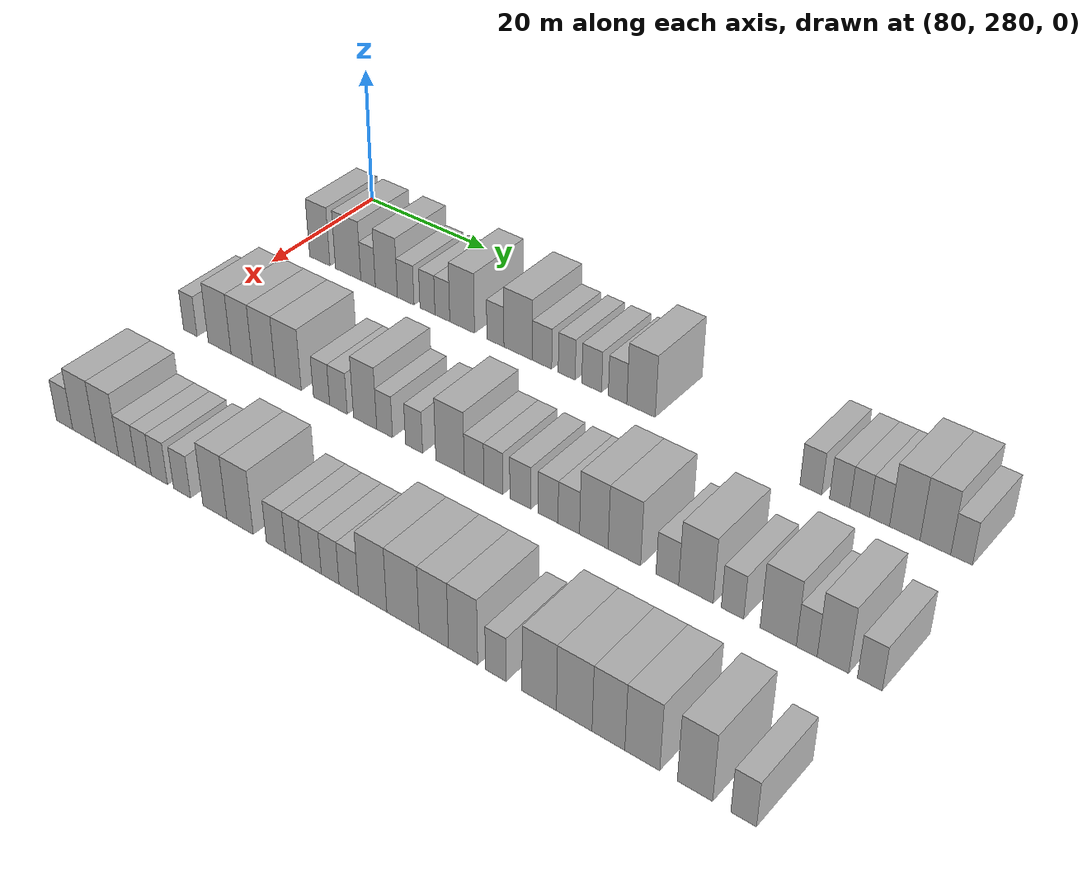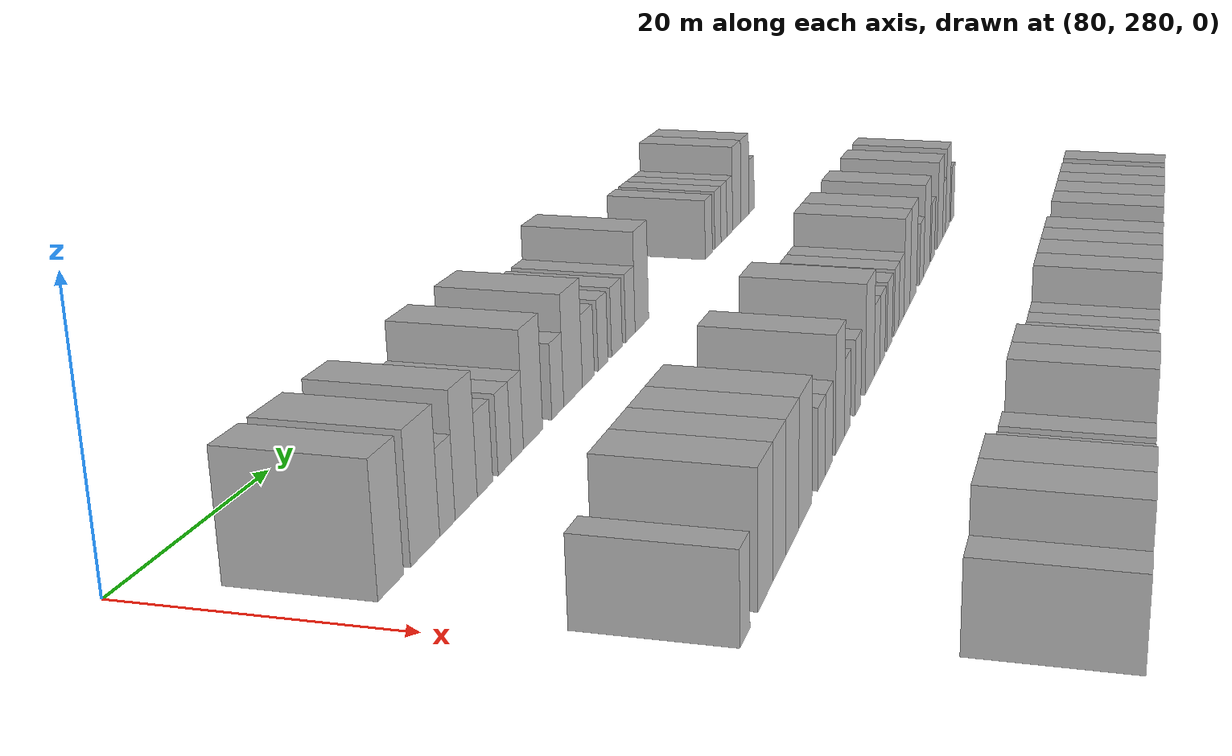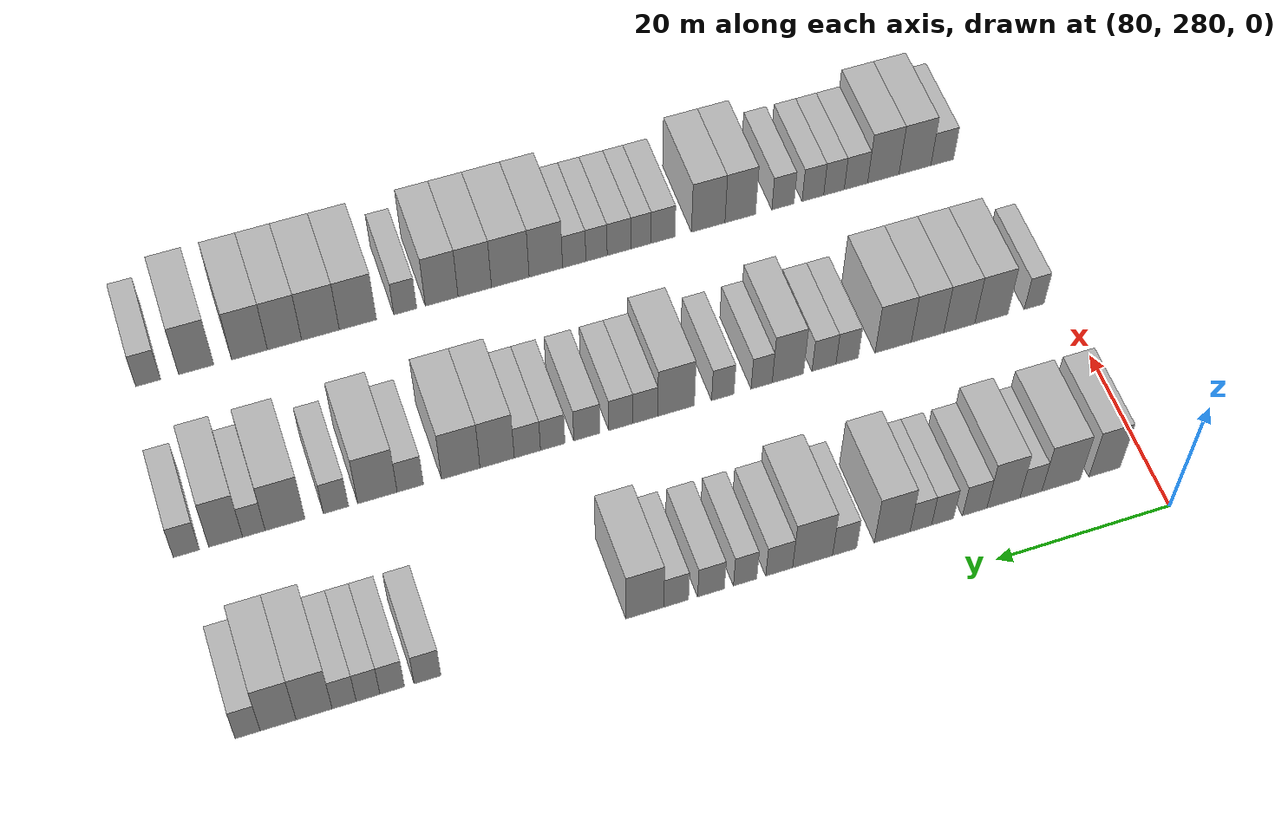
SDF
<sdf version="1.6">
 <world name="default">
  <model name="building_749">
   <static>1</static>
   <pose>91.0000 284.8471 0 0.000000 0.000000 0.000000</pose>
   <link name="link">
    <pose>0 0 4.50 0 0 0</pose>
    <collision name="collision"><geometry><box><size>10.0000 3.6619 9.0000</size></box></geometry></collision>
    <visual name="visual">
     <cast_shadows>0</cast_shadows>
     <geometry><box><size>10.0000 3.6619 9.0000</size></box></geometry>
     <material>
      <script>
       <uri>model://HANNAS_wall/materials/scripts</uri>
       <uri>model://HANNAS_wall/materials/textures</uri>
       <name>vrc/HANNAS_wall</name>
      </script>
     </material>
    </visual>
   </link>
  </model>
  <model name="building_750">
   <static>1</static>
   <pose>91.0000 289.9265 0 0.000000 0.000000 0.000000</pose>
   <link name="link">
    <pose>0 0 4.50 0 0 0</pose>
    <collision name="collision"><geometry><box><size>10.0000 4.4968 9.0000</size></box></geometry></collision>
    <visual name="visual">
     <cast_shadows>0</cast_shadows>
     <geometry><box><size>10.0000 4.4968 9.0000</size></box></geometry>
     <material>
      <script>
       <uri>model://HANNAS_wall/materials/scripts</uri>
       <uri>model://HANNAS_wall/materials/textures</uri>
       <name>vrc/HANNAS_wall</name>
      </script>
     </material>
    </visual>
   </link>
  </model>
  <model name="building_751">
   <static>1</static>
   <pose>91.0000 293.4437 0 0.000000 0.000000 0.000000</pose>
   <link name="link">
    <pose>0 0 3.00 0 0 0</pose>
    <collision name="collision"><geometry><box><size>10.0000 2.5376 6.0000</size></box></geometry></collision>
    <visual name="visual">
     <cast_shadows>0</cast_shadows>
     <geometry><box><size>10.0000 2.5376 6.0000</size></box></geometry>
     <material>
      <script>
       <uri>model://HANNAS_wall/materials/scripts</uri>
       <uri>model://HANNAS_wall/materials/textures</uri>
       <name>vrc/HANNAS_wall</name>
      </script>
     </material>
    </visual>
   </link>
  </model>
  <model name="building_752">
   <static>1</static>
   <pose>91.0000 296.6152 0 0.000000 0.000000 0.000000</pose>
   <link name="link">
    <pose>0 0 4.50 0 0 0</pose>
    <collision name="collision"><geometry><box><size>10.0000 3.8053 9.0000</size></box></geometry></collision>
    <visual name="visual">
     <cast_shadows>0</cast_shadows>
     <geometry><box><size>10.0000 3.8053 9.0000</size></box></geometry>
     <material>
      <script>
       <uri>model://HANNAS_wall/materials/scripts</uri>
       <uri>model://HANNAS_wall/materials/textures</uri>
       <name>vrc/HANNAS_wall</name>
      </script>
     </material>
    </visual>
   </link>
  </model>
  <model name="building_753">
   <static>1</static>
   <pose>91.0000 299.9301 0 0.000000 0.000000 0.000000</pose>
   <link name="link">
    <pose>0 0 3.00 0 0 0</pose>
    <collision name="collision"><geometry><box><size>10.0000 2.8246 6.0000</size></box></geometry></collision>
    <visual name="visual">
     <cast_shadows>0</cast_shadows>
     <geometry><box><size>10.0000 2.8246 6.0000</size></box></geometry>
     <material>
      <script>
       <uri>model://HANNAS_wall/materials/scripts</uri>
       <uri>model://HANNAS_wall/materials/textures</uri>
       <name>vrc/HANNAS_wall</name>
      </script>
     </material>
    </visual>
   </link>
  </model>
  <model name="building_754">
   <static>1</static>
   <pose>91.0000 303.6006 0 0.000000 0.000000 0.000000</pose>
   <link name="link">
    <pose>0 0 3.00 0 0 0</pose>
    <collision name="collision"><geometry><box><size>10.0000 2.5164 6.0000</size></box></geometry></collision>
    <visual name="visual">
     <cast_shadows>0</cast_shadows>
     <geometry><box><size>10.0000 2.5164 6.0000</size></box></geometry>
     <material>
      <script>
       <uri>model://HANNAS_wall/materials/scripts</uri>
       <uri>model://HANNAS_wall/materials/textures</uri>
       <name>vrc/HANNAS_wall</name>
      </script>
     </material>
    </visual>
   </link>
  </model>
  <model name="building_755">
   <static>1</static>
   <pose>91.0000 306.0857 0 0.000000 0.000000 0.000000</pose>
   <link name="link">
    <pose>0 0 3.00 0 0 0</pose>
    <collision name="collision"><geometry><box><size>10.0000 2.4538 6.0000</size></box></geometry></collision>
    <visual name="visual">
     <cast_shadows>0</cast_shadows>
     <geometry><box><size>10.0000 2.4538 6.0000</size></box></geometry>
     <material>
      <script>
       <uri>model://HANNAS_wall/materials/scripts</uri>
       <uri>model://HANNAS_wall/materials/textures</uri>
       <name>vrc/HANNAS_wall</name>
      </script>
     </material>
    </visual>
   </link>
  </model>
  <model name="building_756">
   <static>1</static>
   <pose>91.0000 309.3356 0 0.000000 0.000000 0.000000</pose>
   <link name="link">
    <pose>0 0 4.50 0 0 0</pose>
    <collision name="collision"><geometry><box><size>10.0000 4.0461 9.0000</size></box></geometry></collision>
    <visual name="visual">
     <cast_shadows>0</cast_shadows>
     <geometry><box><size>10.0000 4.0461 9.0000</size></box></geometry>
     <material>
      <script>
       <uri>model://HANNAS_wall/materials/scripts</uri>
       <uri>model://HANNAS_wall/materials/textures</uri>
       <name>vrc/HANNAS_wall</name>
      </script>
     </material>
    </visual>
   </link>
  </model>
  <model name="building_757">
   <static>1</static>
   <pose>91.0000 314.7187 0 0.000000 0.000000 0.000000</pose>
   <link name="link">
    <pose>0 0 3.00 0 0 0</pose>
    <collision name="collision"><geometry><box><size>10.0000 2.7202 6.0000</size></box></geometry></collision>
    <visual name="visual">
     <cast_shadows>0</cast_shadows>
     <geometry><box><size>10.0000 2.7202 6.0000</size></box></geometry>
     <material>
      <script>
       <uri>model://HANNAS_wall/materials/scripts</uri>
       <uri>model://HANNAS_wall/materials/textures</uri>
       <name>vrc/HANNAS_wall</name>
      </script>
     </material>
    </visual>
   </link>
  </model>
  <model name="building_758">
   <static>1</static>
   <pose>91.0000 318.3155 0 0.000000 0.000000 0.000000</pose>
   <link name="link">
    <pose>0 0 4.50 0 0 0</pose>
    <collision name="collision"><geometry><box><size>10.0000 4.4735 9.0000</size></box></geometry></collision>
    <visual name="visual">
     <cast_shadows>0</cast_shadows>
     <geometry><box><size>10.0000 4.4735 9.0000</size></box></geometry>
     <material>
      <script>
       <uri>model://HANNAS_wall/materials/scripts</uri>
       <uri>model://HANNAS_wall/materials/textures</uri>
       <name>vrc/HANNAS_wall</name>
      </script>
     </material>
    </visual>
   </link>
  </model>
  <model name="building_759">
   <static>1</static>
   <pose>91.0000 322.0459 0 0.000000 0.000000 0.000000</pose>
   <link name="link">
    <pose>0 0 3.00 0 0 0</pose>
    <collision name="collision"><geometry><box><size>10.0000 2.9872 6.0000</size></box></geometry></collision>
    <visual name="visual">
     <cast_shadows>0</cast_shadows>
     <geometry><box><size>10.0000 2.9872 6.0000</size></box></geometry>
     <material>
      <script>
       <uri>model://HANNAS_wall/materials/scripts</uri>
       <uri>model://HANNAS_wall/materials/textures</uri>
       <name>vrc/HANNAS_wall</name>
      </script>
     </material>
    </visual>
   </link>
  </model>
  <model name="building_760">
   <static>1</static>
   <pose>91.0000 325.8309 0 0.000000 0.000000 0.000000</pose>
   <link name="link">
    <pose>0 0 3.00 0 0 0</pose>
    <collision name="collision"><geometry><box><size>10.0000 2.5828 6.0000</size></box></geometry></collision>
    <visual name="visual">
     <cast_shadows>0</cast_shadows>
     <geometry><box><size>10.0000 2.5828 6.0000</size></box></geometry>
     <material>
      <script>
       <uri>model://HANNAS_wall/materials/scripts</uri>
       <uri>model://HANNAS_wall/materials/textures</uri>
       <name>vrc/HANNAS_wall</name>
      </script>
     </material>
    </visual>
   </link>
  </model>
  <model name="building_761">
   <static>1</static>
   <pose>91.0000 329.5987 0 0.000000 0.000000 0.000000</pose>
   <link name="link">
    <pose>0 0 3.00 0 0 0</pose>
    <collision name="collision"><geometry><box><size>10.0000 2.9529 6.0000</size></box></geometry></collision>
    <visual name="visual">
     <cast_shadows>0</cast_shadows>
     <geometry><box><size>10.0000 2.9529 6.0000</size></box></geometry>
     <material>
      <script>
       <uri>model://HANNAS_wall/materials/scripts</uri>
       <uri>model://HANNAS_wall/materials/textures</uri>
       <name>vrc/HANNAS_wall</name>
      </script>
     </material>
    </visual>
   </link>
  </model>
  <model name="building_762">
   <static>1</static>
   <pose>91.0000 333.4351 0 0.000000 0.000000 0.000000</pose>
   <link name="link">
    <pose>0 0 3.00 0 0 0</pose>
    <collision name="collision"><geometry><box><size>10.0000 2.7197 6.0000</size></box></geometry></collision>
    <visual name="visual">
     <cast_shadows>0</cast_shadows>
     <geometry><box><size>10.0000 2.7197 6.0000</size></box></geometry>
     <material>
      <script>
       <uri>model://HANNAS_wall/materials/scripts</uri>
       <uri>model://HANNAS_wall/materials/textures</uri>
       <name>vrc/HANNAS_wall</name>
      </script>
     </material>
    </visual>
   </link>
  </model>
  <model name="building_763">
   <static>1</static>
   <pose>91.0000 336.8562 0 0.000000 0.000000 0.000000</pose>
   <link name="link">
    <pose>0 0 4.50 0 0 0</pose>
    <collision name="collision"><geometry><box><size>10.0000 4.1226 9.0000</size></box></geometry></collision>
    <visual name="visual">
     <cast_shadows>0</cast_shadows>
     <geometry><box><size>10.0000 4.1226 9.0000</size></box></geometry>
     <material>
      <script>
       <uri>model://HANNAS_wall/materials/scripts</uri>
       <uri>model://HANNAS_wall/materials/textures</uri>
       <name>vrc/HANNAS_wall</name>
      </script>
     </material>
    </visual>
   </link>
  </model>
  <model name="building_764">
   <static>1</static>
   <pose>91.0000 360.1532 0 0.000000 0.000000 0.000000</pose>
   <link name="link">
    <pose>0 0 3.00 0 0 0</pose>
    <collision name="collision"><geometry><box><size>10.0000 2.8238 6.0000</size></box></geometry></collision>
    <visual name="visual">
     <cast_shadows>0</cast_shadows>
     <geometry><box><size>10.0000 2.8238 6.0000</size></box></geometry>
     <material>
      <script>
       <uri>model://HANNAS_wall/materials/scripts</uri>
       <uri>model://HANNAS_wall/materials/textures</uri>
       <name>vrc/HANNAS_wall</name>
      </script>
     </material>
    </visual>
   </link>
  </model>
  <model name="building_765">
   <static>1</static>
   <pose>91.0000 363.8565 0 0.000000 0.000000 0.000000</pose>
   <link name="link">
    <pose>0 0 3.00 0 0 0</pose>
    <collision name="collision"><geometry><box><size>10.0000 2.5828 6.0000</size></box></geometry></collision>
    <visual name="visual">
     <cast_shadows>0</cast_shadows>
     <geometry><box><size>10.0000 2.5828 6.0000</size></box></geometry>
     <material>
      <script>
       <uri>model://HANNAS_wall/materials/scripts</uri>
       <uri>model://HANNAS_wall/materials/textures</uri>
       <name>vrc/HANNAS_wall</name>
      </script>
     </material>
    </visual>
   </link>
  </model>
  <model name="building_766">
   <static>1</static>
   <pose>91.0000 366.3862 0 0.000000 0.000000 0.000000</pose>
   <link name="link">
    <pose>0 0 3.00 0 0 0</pose>
    <collision name="collision"><geometry><box><size>10.0000 2.4766 6.0000</size></box></geometry></collision>
    <visual name="visual">
     <cast_shadows>0</cast_shadows>
     <geometry><box><size>10.0000 2.4766 6.0000</size></box></geometry>
     <material>
      <script>
       <uri>model://HANNAS_wall/materials/scripts</uri>
       <uri>model://HANNAS_wall/materials/textures</uri>
       <name>vrc/HANNAS_wall</name>
      </script>
     </material>
    </visual>
   </link>
  </model>
  <model name="building_767">
   <static>1</static>
   <pose>91.0000 368.8780 0 0.000000 0.000000 0.000000</pose>
   <link name="link">
    <pose>0 0 3.00 0 0 0</pose>
    <collision name="collision"><geometry><box><size>10.0000 2.5068 6.0000</size></box></geometry></collision>
    <visual name="visual">
     <cast_shadows>0</cast_shadows>
     <geometry><box><size>10.0000 2.5068 6.0000</size></box></geometry>
     <material>
      <script>
       <uri>model://HANNAS_wall/materials/scripts</uri>
       <uri>model://HANNAS_wall/materials/textures</uri>
       <name>vrc/HANNAS_wall</name>
      </script>
     </material>
    </visual>
   </link>
  </model>
  <model name="building_768">
   <static>1</static>
   <pose>91.0000 371.9996 0 0.000000 0.000000 0.000000</pose>
   <link name="link">
    <pose>0 0 4.50 0 0 0</pose>
    <collision name="collision"><geometry><box><size>10.0000 3.7364 9.0000</size></box></geometry></collision>
    <visual name="visual">
     <cast_shadows>0</cast_shadows>
     <geometry><box><size>10.0000 3.7364 9.0000</size></box></geometry>
     <material>
      <script>
       <uri>model://HANNAS_wall/materials/scripts</uri>
       <uri>model://HANNAS_wall/materials/textures</uri>
       <name>vrc/HANNAS_wall</name>
      </script>
     </material>
    </visual>
   </link>
  </model>
  <model name="building_769">
   <static>1</static>
   <pose>91.0000 375.7175 0 0.000000 0.000000 0.000000</pose>
   <link name="link">
    <pose>0 0 4.50 0 0 0</pose>
    <collision name="collision"><geometry><box><size>10.0000 3.6994 9.0000</size></box></geometry></collision>
    <visual name="visual">
     <cast_shadows>0</cast_shadows>
     <geometry><box><size>10.0000 3.6994 9.0000</size></box></geometry>
     <material>
      <script>
       <uri>model://HANNAS_wall/materials/scripts</uri>
       <uri>model://HANNAS_wall/materials/textures</uri>
       <name>vrc/HANNAS_wall</name>
      </script>
     </material>
    </visual>
   </link>
  </model>
  <model name="building_770">
   <static>1</static>
   <pose>91.0000 378.8566 0 0.000000 0.000000 0.000000</pose>
   <link name="link">
    <pose>0 0 3.00 0 0 0</pose>
    <collision name="collision"><geometry><box><size>10.0000 2.5788 6.0000</size></box></geometry></collision>
    <visual name="visual">
     <cast_shadows>0</cast_shadows>
     <geometry><box><size>10.0000 2.5788 6.0000</size></box></geometry>
     <material>
      <script>
       <uri>model://HANNAS_wall/materials/scripts</uri>
       <uri>model://HANNAS_wall/materials/textures</uri>
       <name>vrc/HANNAS_wall</name>
      </script>
     </material>
    </visual>
   </link>
  </model>
  <model name="building_935">
   <static>1</static>
   <pose>113.0000 283.2293 0 0.000000 0.000000 0.000000</pose>
   <link name="link">
    <pose>0 0 3.00 0 0 0</pose>
    <collision name="collision"><geometry><box><size>10.0000 2.4081 6.0000</size></box></geometry></collision>
    <visual name="visual">
     <cast_shadows>0</cast_shadows>
     <geometry><box><size>10.0000 2.4081 6.0000</size></box></geometry>
     <material>
      <script>
       <uri>model://HANNAS_wall/materials/scripts</uri>
       <uri>model://HANNAS_wall/materials/textures</uri>
       <name>vrc/HANNAS_wall</name>
      </script>
     </material>
    </visual>
   </link>
  </model>
  <model name="building_936">
   <static>1</static>
   <pose>113.0000 288.4390 0 0.000000 0.000000 0.000000</pose>
   <link name="link">
    <pose>0 0 4.50 0 0 0</pose>
    <collision name="collision"><geometry><box><size>10.0000 4.0114 9.0000</size></box></geometry></collision>
    <visual name="visual">
     <cast_shadows>0</cast_shadows>
     <geometry><box><size>10.0000 4.0114 9.0000</size></box></geometry>
     <material>
      <script>
       <uri>model://HANNAS_wall/materials/scripts</uri>
       <uri>model://HANNAS_wall/materials/textures</uri>
       <name>vrc/HANNAS_wall</name>
      </script>
     </material>
    </visual>
   </link>
  </model>
  <model name="building_937">
   <static>1</static>
   <pose>113.0000 292.3110 0 0.000000 0.000000 0.000000</pose>
   <link name="link">
    <pose>0 0 4.50 0 0 0</pose>
    <collision name="collision"><geometry><box><size>10.0000 3.7325 9.0000</size></box></geometry></collision>
    <visual name="visual">
     <cast_shadows>0</cast_shadows>
     <geometry><box><size>10.0000 3.7325 9.0000</size></box></geometry>
     <material>
      <script>
       <uri>model://HANNAS_wall/materials/scripts</uri>
       <uri>model://HANNAS_wall/materials/textures</uri>
       <name>vrc/HANNAS_wall</name>
      </script>
     </material>
    </visual>
   </link>
  </model>
  <model name="building_938">
   <static>1</static>
   <pose>113.0000 296.1330 0 0.000000 0.000000 0.000000</pose>
   <link name="link">
    <pose>0 0 4.50 0 0 0</pose>
    <collision name="collision"><geometry><box><size>10.0000 3.9115 9.0000</size></box></geometry></collision>
    <visual name="visual">
     <cast_shadows>0</cast_shadows>
     <geometry><box><size>10.0000 3.9115 9.0000</size></box></geometry>
     <material>
      <script>
       <uri>model://HANNAS_wall/materials/scripts</uri>
       <uri>model://HANNAS_wall/materials/textures</uri>
       <name>vrc/HANNAS_wall</name>
      </script>
     </material>
    </visual>
   </link>
  </model>
  <model name="building_939">
   <static>1</static>
   <pose>113.0000 300.2372 0 0.000000 0.000000 0.000000</pose>
   <link name="link">
    <pose>0 0 4.50 0 0 0</pose>
    <collision name="collision"><geometry><box><size>10.0000 4.2970 9.0000</size></box></geometry></collision>
    <visual name="visual">
     <cast_shadows>0</cast_shadows>
     <geometry><box><size>10.0000 4.2970 9.0000</size></box></geometry>
     <material>
      <script>
       <uri>model://HANNAS_wall/materials/scripts</uri>
       <uri>model://HANNAS_wall/materials/textures</uri>
       <name>vrc/HANNAS_wall</name>
      </script>
     </material>
    </visual>
   </link>
  </model>
  <model name="building_940">
   <static>1</static>
   <pose>113.0000 305.7078 0 0.000000 0.000000 0.000000</pose>
   <link name="link">
    <pose>0 0 3.00 0 0 0</pose>
    <collision name="collision"><geometry><box><size>10.0000 2.6440 6.0000</size></box></geometry></collision>
    <visual name="visual">
     <cast_shadows>0</cast_shadows>
     <geometry><box><size>10.0000 2.6440 6.0000</size></box></geometry>
     <material>
      <script>
       <uri>model://HANNAS_wall/materials/scripts</uri>
       <uri>model://HANNAS_wall/materials/textures</uri>
       <name>vrc/HANNAS_wall</name>
      </script>
     </material>
    </visual>
   </link>
  </model>
  <model name="building_941">
   <static>1</static>
   <pose>113.0000 308.4463 0 0.000000 0.000000 0.000000</pose>
   <link name="link">
    <pose>0 0 3.00 0 0 0</pose>
    <collision name="collision"><geometry><box><size>10.0000 2.8330 6.0000</size></box></geometry></collision>
    <visual name="visual">
     <cast_shadows>0</cast_shadows>
     <geometry><box><size>10.0000 2.8330 6.0000</size></box></geometry>
     <material>
      <script>
       <uri>model://HANNAS_wall/materials/scripts</uri>
       <uri>model://HANNAS_wall/materials/textures</uri>
       <name>vrc/HANNAS_wall</name>
      </script>
     </material>
    </visual>
   </link>
  </model>
  <model name="building_942">
   <static>1</static>
   <pose>113.0000 312.6977 0 0.000000 0.000000 0.000000</pose>
   <link name="link">
    <pose>0 0 4.50 0 0 0</pose>
    <collision name="collision"><geometry><box><size>10.0000 3.6698 9.0000</size></box></geometry></collision>
    <visual name="visual">
     <cast_shadows>0</cast_shadows>
     <geometry><box><size>10.0000 3.6698 9.0000</size></box></geometry>
     <material>
      <script>
       <uri>model://HANNAS_wall/materials/scripts</uri>
       <uri>model://HANNAS_wall/materials/textures</uri>
       <name>vrc/HANNAS_wall</name>
      </script>
     </material>
    </visual>
   </link>
  </model>
  <model name="building_943">
   <static>1</static>
   <pose>113.0000 315.7621 0 0.000000 0.000000 0.000000</pose>
   <link name="link">
    <pose>0 0 3.00 0 0 0</pose>
    <collision name="collision"><geometry><box><size>10.0000 2.4589 6.0000</size></box></geometry></collision>
    <visual name="visual">
     <cast_shadows>0</cast_shadows>
     <geometry><box><size>10.0000 2.4589 6.0000</size></box></geometry>
     <material>
      <script>
       <uri>model://HANNAS_wall/materials/scripts</uri>
       <uri>model://HANNAS_wall/materials/textures</uri>
       <name>vrc/HANNAS_wall</name>
      </script>
     </material>
    </visual>
   </link>
  </model>
  <model name="building_944">
   <static>1</static>
   <pose>113.0000 320.2886 0 0.000000 0.000000 0.000000</pose>
   <link name="link">
    <pose>0 0 3.00 0 0 0</pose>
    <collision name="collision"><geometry><box><size>10.0000 2.5941 6.0000</size></box></geometry></collision>
    <visual name="visual">
     <cast_shadows>0</cast_shadows>
     <geometry><box><size>10.0000 2.5941 6.0000</size></box></geometry>
     <material>
      <script>
       <uri>model://HANNAS_wall/materials/scripts</uri>
       <uri>model://HANNAS_wall/materials/textures</uri>
       <name>vrc/HANNAS_wall</name>
      </script>
     </material>
    </visual>
   </link>
  </model>
  <model name="building_945">
   <static>1</static>
   <pose>113.0000 325.7051 0 0.000000 0.000000 0.000000</pose>
   <link name="link">
    <pose>0 0 4.50 0 0 0</pose>
    <collision name="collision"><geometry><box><size>10.0000 4.2390 9.0000</size></box></geometry></collision>
    <visual name="visual">
     <cast_shadows>0</cast_shadows>
     <geometry><box><size>10.0000 4.2390 9.0000</size></box></geometry>
     <material>
      <script>
       <uri>model://HANNAS_wall/materials/scripts</uri>
       <uri>model://HANNAS_wall/materials/textures</uri>
       <name>vrc/HANNAS_wall</name>
      </script>
     </material>
    </visual>
   </link>
  </model>
  <model name="building_946">
   <static>1</static>
   <pose>113.0000 329.2467 0 0.000000 0.000000 0.000000</pose>
   <link name="link">
    <pose>0 0 3.00 0 0 0</pose>
    <collision name="collision"><geometry><box><size>10.0000 2.8441 6.0000</size></box></geometry></collision>
    <visual name="visual">
     <cast_shadows>0</cast_shadows>
     <geometry><box><size>10.0000 2.8441 6.0000</size></box></geometry>
     <material>
      <script>
       <uri>model://HANNAS_wall/materials/scripts</uri>
       <uri>model://HANNAS_wall/materials/textures</uri>
       <name>vrc/HANNAS_wall</name>
      </script>
     </material>
    </visual>
   </link>
  </model>
  <model name="building_947">
   <static>1</static>
   <pose>113.0000 332.0336 0 0.000000 0.000000 0.000000</pose>
   <link name="link">
    <pose>0 0 3.00 0 0 0</pose>
    <collision name="collision"><geometry><box><size>10.0000 2.7299 6.0000</size></box></geometry></collision>
    <visual name="visual">
     <cast_shadows>0</cast_shadows>
     <geometry><box><size>10.0000 2.7299 6.0000</size></box></geometry>
     <material>
      <script>
       <uri>model://HANNAS_wall/materials/scripts</uri>
       <uri>model://HANNAS_wall/materials/textures</uri>
       <name>vrc/HANNAS_wall</name>
      </script>
     </material>
    </visual>
   </link>
  </model>
  <model name="building_948">
   <static>1</static>
   <pose>113.0000 335.8923 0 0.000000 0.000000 0.000000</pose>
   <link name="link">
    <pose>0 0 3.00 0 0 0</pose>
    <collision name="collision"><geometry><box><size>10.0000 2.9874 6.0000</size></box></geometry></collision>
    <visual name="visual">
     <cast_shadows>0</cast_shadows>
     <geometry><box><size>10.0000 2.9874 6.0000</size></box></geometry>
     <material>
      <script>
       <uri>model://HANNAS_wall/materials/scripts</uri>
       <uri>model://HANNAS_wall/materials/textures</uri>
       <name>vrc/HANNAS_wall</name>
      </script>
     </material>
    </visual>
   </link>
  </model>
  <model name="building_949">
   <static>1</static>
   <pose>113.0000 339.7669 0 0.000000 0.000000 0.000000</pose>
   <link name="link">
    <pose>0 0 3.00 0 0 0</pose>
    <collision name="collision"><geometry><box><size>10.0000 2.7619 6.0000</size></box></geometry></collision>
    <visual name="visual">
     <cast_shadows>0</cast_shadows>
     <geometry><box><size>10.0000 2.7619 6.0000</size></box></geometry>
     <material>
      <script>
       <uri>model://HANNAS_wall/materials/scripts</uri>
       <uri>model://HANNAS_wall/materials/textures</uri>
       <name>vrc/HANNAS_wall</name>
      </script>
     </material>
    </visual>
   </link>
  </model>
  <model name="building_950">
   <static>1</static>
   <pose>113.0000 342.6238 0 0.000000 0.000000 0.000000</pose>
   <link name="link">
    <pose>0 0 3.00 0 0 0</pose>
    <collision name="collision"><geometry><box><size>10.0000 2.9520 6.0000</size></box></geometry></collision>
    <visual name="visual">
     <cast_shadows>0</cast_shadows>
     <geometry><box><size>10.0000 2.9520 6.0000</size></box></geometry>
     <material>
      <script>
       <uri>model://HANNAS_wall/materials/scripts</uri>
       <uri>model://HANNAS_wall/materials/textures</uri>
       <name>vrc/HANNAS_wall</name>
      </script>
     </material>
    </visual>
   </link>
  </model>
  <model name="building_951">
   <static>1</static>
   <pose>113.0000 346.0213 0 0.000000 0.000000 0.000000</pose>
   <link name="link">
    <pose>0 0 4.50 0 0 0</pose>
    <collision name="collision"><geometry><box><size>10.0000 3.8430 9.0000</size></box></geometry></collision>
    <visual name="visual">
     <cast_shadows>0</cast_shadows>
     <geometry><box><size>10.0000 3.8430 9.0000</size></box></geometry>
     <material>
      <script>
       <uri>model://HANNAS_wall/materials/scripts</uri>
       <uri>model://HANNAS_wall/materials/textures</uri>
       <name>vrc/HANNAS_wall</name>
      </script>
     </material>
    </visual>
   </link>
  </model>
  <model name="building_952">
   <static>1</static>
   <pose>113.0000 350.0892 0 0.000000 0.000000 0.000000</pose>
   <link name="link">
    <pose>0 0 4.50 0 0 0</pose>
    <collision name="collision"><geometry><box><size>10.0000 4.2928 9.0000</size></box></geometry></collision>
    <visual name="visual">
     <cast_shadows>0</cast_shadows>
     <geometry><box><size>10.0000 4.2928 9.0000</size></box></geometry>
     <material>
      <script>
       <uri>model://HANNAS_wall/materials/scripts</uri>
       <uri>model://HANNAS_wall/materials/textures</uri>
       <name>vrc/HANNAS_wall</name>
      </script>
     </material>
    </visual>
   </link>
  </model>
  <model name="building_953">
   <static>1</static>
   <pose>113.0000 355.6866 0 0.000000 0.000000 0.000000</pose>
   <link name="link">
    <pose>0 0 3.00 0 0 0</pose>
    <collision name="collision"><geometry><box><size>10.0000 2.9021 6.0000</size></box></geometry></collision>
    <visual name="visual">
     <cast_shadows>0</cast_shadows>
     <geometry><box><size>10.0000 2.9021 6.0000</size></box></geometry>
     <material>
      <script>
       <uri>model://HANNAS_wall/materials/scripts</uri>
       <uri>model://HANNAS_wall/materials/textures</uri>
       <name>vrc/HANNAS_wall</name>
      </script>
     </material>
    </visual>
   </link>
  </model>
  <model name="building_954">
   <static>1</static>
   <pose>113.0000 359.3129 0 0.000000 0.000000 0.000000</pose>
   <link name="link">
    <pose>0 0 4.50 0 0 0</pose>
    <collision name="collision"><geometry><box><size>10.0000 4.3505 9.0000</size></box></geometry></collision>
    <visual name="visual">
     <cast_shadows>0</cast_shadows>
     <geometry><box><size>10.0000 4.3505 9.0000</size></box></geometry>
     <material>
      <script>
       <uri>model://HANNAS_wall/materials/scripts</uri>
       <uri>model://HANNAS_wall/materials/textures</uri>
       <name>vrc/HANNAS_wall</name>
      </script>
     </material>
    </visual>
   </link>
  </model>
  <model name="building_955">
   <static>1</static>
   <pose>113.0000 363.8660 0 0.000000 0.000000 0.000000</pose>
   <link name="link">
    <pose>0 0 3.00 0 0 0</pose>
    <collision name="collision"><geometry><box><size>10.0000 2.7557 6.0000</size></box></geometry></collision>
    <visual name="visual">
     <cast_shadows>0</cast_shadows>
     <geometry><box><size>10.0000 2.7557 6.0000</size></box></geometry>
     <material>
      <script>
       <uri>model://HANNAS_wall/materials/scripts</uri>
       <uri>model://HANNAS_wall/materials/textures</uri>
       <name>vrc/HANNAS_wall</name>
      </script>
     </material>
    </visual>
   </link>
  </model>
  <model name="building_956">
   <static>1</static>
   <pose>113.0000 369.4056 0 0.000000 0.000000 0.000000</pose>
   <link name="link">
    <pose>0 0 4.50 0 0 0</pose>
    <collision name="collision"><geometry><box><size>10.0000 4.3235 9.0000</size></box></geometry></collision>
    <visual name="visual">
     <cast_shadows>0</cast_shadows>
     <geometry><box><size>10.0000 4.3235 9.0000</size></box></geometry>
     <material>
      <script>
       <uri>model://HANNAS_wall/materials/scripts</uri>
       <uri>model://HANNAS_wall/materials/textures</uri>
       <name>vrc/HANNAS_wall</name>
      </script>
     </material>
    </visual>
   </link>
  </model>
  <model name="building_957">
   <static>1</static>
   <pose>113.0000 372.7862 0 0.000000 0.000000 0.000000</pose>
   <link name="link">
    <pose>0 0 3.00 0 0 0</pose>
    <collision name="collision"><geometry><box><size>10.0000 2.4377 6.0000</size></box></geometry></collision>
    <visual name="visual">
     <cast_shadows>0</cast_shadows>
     <geometry><box><size>10.0000 2.4377 6.0000</size></box></geometry>
     <material>
      <script>
       <uri>model://HANNAS_wall/materials/scripts</uri>
       <uri>model://HANNAS_wall/materials/textures</uri>
       <name>vrc/HANNAS_wall</name>
      </script>
     </material>
    </visual>
   </link>
  </model>
  <model name="building_958">
   <static>1</static>
   <pose>113.0000 375.8260 0 0.000000 0.000000 0.000000</pose>
   <link name="link">
    <pose>0 0 4.50 0 0 0</pose>
    <collision name="collision"><geometry><box><size>10.0000 3.6419 9.0000</size></box></geometry></collision>
    <visual name="visual">
     <cast_shadows>0</cast_shadows>
     <geometry><box><size>10.0000 3.6419 9.0000</size></box></geometry>
     <material>
      <script>
       <uri>model://HANNAS_wall/materials/scripts</uri>
       <uri>model://HANNAS_wall/materials/textures</uri>
       <name>vrc/HANNAS_wall</name>
      </script>
     </material>
    </visual>
   </link>
  </model>
  <model name="building_959">
   <static>1</static>
   <pose>113.0000 380.0481 0 0.000000 0.000000 0.000000</pose>
   <link name="link">
    <pose>0 0 3.00 0 0 0</pose>
    <collision name="collision"><geometry><box><size>10.0000 2.8022 6.0000</size></box></geometry></collision>
    <visual name="visual">
     <cast_shadows>0</cast_shadows>
     <geometry><box><size>10.0000 2.8022 6.0000</size></box></geometry>
     <material>
      <script>
       <uri>model://HANNAS_wall/materials/scripts</uri>
       <uri>model://HANNAS_wall/materials/textures</uri>
       <name>vrc/HANNAS_wall</name>
      </script>
     </material>
    </visual>
   </link>
  </model>
  <model name="building_1131">
   <static>1</static>
   <pose>135.0000 285.0780 0 0.000000 0.000000 0.000000</pose>
   <link name="link">
    <pose>0 0 3.00 0 0 0</pose>
    <collision name="collision"><geometry><box><size>10.0000 2.8690 6.0000</size></box></geometry></collision>
    <visual name="visual">
     <cast_shadows>0</cast_shadows>
     <geometry><box><size>10.0000 2.8690 6.0000</size></box></geometry>
     <material>
      <script>
       <uri>model://HANNAS_wall/materials/scripts</uri>
       <uri>model://HANNAS_wall/materials/textures</uri>
       <name>vrc/HANNAS_wall</name>
      </script>
     </material>
    </visual>
   </link>
  </model>
  <model name="building_1132">
   <static>1</static>
   <pose>135.0000 288.5153 0 0.000000 0.000000 0.000000</pose>
   <link name="link">
    <pose>0 0 4.50 0 0 0</pose>
    <collision name="collision"><geometry><box><size>10.0000 4.0056 9.0000</size></box></geometry></collision>
    <visual name="visual">
     <cast_shadows>0</cast_shadows>
     <geometry><box><size>10.0000 4.0056 9.0000</size></box></geometry>
     <material>
      <script>
       <uri>model://HANNAS_wall/materials/scripts</uri>
       <uri>model://HANNAS_wall/materials/textures</uri>
       <name>vrc/HANNAS_wall</name>
      </script>
     </material>
    </visual>
   </link>
  </model>
  <model name="building_1133">
   <static>1</static>
   <pose>135.0000 292.4786 0 0.000000 0.000000 0.000000</pose>
   <link name="link">
    <pose>0 0 4.50 0 0 0</pose>
    <collision name="collision"><geometry><box><size>10.0000 3.9210 9.0000</size></box></geometry></collision>
    <visual name="visual">
     <cast_shadows>0</cast_shadows>
     <geometry><box><size>10.0000 3.9210 9.0000</size></box></geometry>
     <material>
      <script>
       <uri>model://HANNAS_wall/materials/scripts</uri>
       <uri>model://HANNAS_wall/materials/textures</uri>
       <name>vrc/HANNAS_wall</name>
      </script>
     </material>
    </visual>
   </link>
  </model>
  <model name="building_1134">
   <static>1</static>
   <pose>135.0000 295.8909 0 0.000000 0.000000 0.000000</pose>
   <link name="link">
    <pose>0 0 3.00 0 0 0</pose>
    <collision name="collision"><geometry><box><size>10.0000 2.9035 6.0000</size></box></geometry></collision>
    <visual name="visual">
     <cast_shadows>0</cast_shadows>
     <geometry><box><size>10.0000 2.9035 6.0000</size></box></geometry>
     <material>
      <script>
       <uri>model://HANNAS_wall/materials/scripts</uri>
       <uri>model://HANNAS_wall/materials/textures</uri>
       <name>vrc/HANNAS_wall</name>
      </script>
     </material>
    </visual>
   </link>
  </model>
  <model name="building_1135">
   <static>1</static>
   <pose>135.0000 298.6175 0 0.000000 0.000000 0.000000</pose>
   <link name="link">
    <pose>0 0 3.00 0 0 0</pose>
    <collision name="collision"><geometry><box><size>10.0000 2.5497 6.0000</size></box></geometry></collision>
    <visual name="visual">
     <cast_shadows>0</cast_shadows>
     <geometry><box><size>10.0000 2.5497 6.0000</size></box></geometry>
     <material>
      <script>
       <uri>model://HANNAS_wall/materials/scripts</uri>
       <uri>model://HANNAS_wall/materials/textures</uri>
       <name>vrc/HANNAS_wall</name>
      </script>
     </material>
    </visual>
   </link>
  </model>
  <model name="building_1136">
   <static>1</static>
   <pose>135.0000 301.2256 0 0.000000 0.000000 0.000000</pose>
   <link name="link">
    <pose>0 0 3.00 0 0 0</pose>
    <collision name="collision"><geometry><box><size>10.0000 2.6665 6.0000</size></box></geometry></collision>
    <visual name="visual">
     <cast_shadows>0</cast_shadows>
     <geometry><box><size>10.0000 2.6665 6.0000</size></box></geometry>
     <material>
      <script>
       <uri>model://HANNAS_wall/materials/scripts</uri>
       <uri>model://HANNAS_wall/materials/textures</uri>
       <name>vrc/HANNAS_wall</name>
      </script>
     </material>
    </visual>
   </link>
  </model>
  <model name="building_1137">
   <static>1</static>
   <pose>135.0000 304.9187 0 0.000000 0.000000 0.000000</pose>
   <link name="link">
    <pose>0 0 3.00 0 0 0</pose>
    <collision name="collision"><geometry><box><size>10.0000 2.7197 6.0000</size></box></geometry></collision>
    <visual name="visual">
     <cast_shadows>0</cast_shadows>
     <geometry><box><size>10.0000 2.7197 6.0000</size></box></geometry>
     <material>
      <script>
       <uri>model://HANNAS_wall/materials/scripts</uri>
       <uri>model://HANNAS_wall/materials/textures</uri>
       <name>vrc/HANNAS_wall</name>
      </script>
     </material>
    </visual>
   </link>
  </model>
  <model name="building_1138">
   <static>1</static>
   <pose>135.0000 310.1503 0 0.000000 0.000000 0.000000</pose>
   <link name="link">
    <pose>0 0 4.50 0 0 0</pose>
    <collision name="collision"><geometry><box><size>10.0000 3.7435 9.0000</size></box></geometry></collision>
    <visual name="visual">
     <cast_shadows>0</cast_shadows>
     <geometry><box><size>10.0000 3.7435 9.0000</size></box></geometry>
     <material>
      <script>
       <uri>model://HANNAS_wall/materials/scripts</uri>
       <uri>model://HANNAS_wall/materials/textures</uri>
       <name>vrc/HANNAS_wall</name>
      </script>
     </material>
    </visual>
   </link>
  </model>
  <model name="building_1139">
   <static>1</static>
   <pose>135.0000 314.0550 0 0.000000 0.000000 0.000000</pose>
   <link name="link">
    <pose>0 0 4.50 0 0 0</pose>
    <collision name="collision"><geometry><box><size>10.0000 4.0660 9.0000</size></box></geometry></collision>
    <visual name="visual">
     <cast_shadows>0</cast_shadows>
     <geometry><box><size>10.0000 4.0660 9.0000</size></box></geometry>
     <material>
      <script>
       <uri>model://HANNAS_wall/materials/scripts</uri>
       <uri>model://HANNAS_wall/materials/textures</uri>
       <name>vrc/HANNAS_wall</name>
      </script>
     </material>
    </visual>
   </link>
  </model>
  <model name="building_1140">
   <static>1</static>
   <pose>135.0000 319.5353 0 0.000000 0.000000 0.000000</pose>
   <link name="link">
    <pose>0 0 3.00 0 0 0</pose>
    <collision name="collision"><geometry><box><size>10.0000 2.8945 6.0000</size></box></geometry></collision>
    <visual name="visual">
     <cast_shadows>0</cast_shadows>
     <geometry><box><size>10.0000 2.8945 6.0000</size></box></geometry>
     <material>
      <script>
       <uri>model://HANNAS_wall/materials/scripts</uri>
       <uri>model://HANNAS_wall/materials/textures</uri>
       <name>vrc/HANNAS_wall</name>
      </script>
     </material>
    </visual>
   </link>
  </model>
  <model name="building_1141">
   <static>1</static>
   <pose>135.0000 322.1828 0 0.000000 0.000000 0.000000</pose>
   <link name="link">
    <pose>0 0 3.00 0 0 0</pose>
    <collision name="collision"><geometry><box><size>10.0000 2.4004 6.0000</size></box></geometry></collision>
    <visual name="visual">
     <cast_shadows>0</cast_shadows>
     <geometry><box><size>10.0000 2.4004 6.0000</size></box></geometry>
     <material>
      <script>
       <uri>model://HANNAS_wall/materials/scripts</uri>
       <uri>model://HANNAS_wall/materials/textures</uri>
       <name>vrc/HANNAS_wall</name>
      </script>
     </material>
    </visual>
   </link>
  </model>
  <model name="building_1142">
   <static>1</static>
   <pose>135.0000 324.8073 0 0.000000 0.000000 0.000000</pose>
   <link name="link">
    <pose>0 0 3.00 0 0 0</pose>
    <collision name="collision"><geometry><box><size>10.0000 2.8487 6.0000</size></box></geometry></collision>
    <visual name="visual">
     <cast_shadows>0</cast_shadows>
     <geometry><box><size>10.0000 2.8487 6.0000</size></box></geometry>
     <material>
      <script>
       <uri>model://HANNAS_wall/materials/scripts</uri>
       <uri>model://HANNAS_wall/materials/textures</uri>
       <name>vrc/HANNAS_wall</name>
      </script>
     </material>
    </visual>
   </link>
  </model>
  <model name="building_1143">
   <static>1</static>
   <pose>135.0000 327.5058 0 0.000000 0.000000 0.000000</pose>
   <link name="link">
    <pose>0 0 3.00 0 0 0</pose>
    <collision name="collision"><geometry><box><size>10.0000 2.5483 6.0000</size></box></geometry></collision>
    <visual name="visual">
     <cast_shadows>0</cast_shadows>
     <geometry><box><size>10.0000 2.5483 6.0000</size></box></geometry>
     <material>
      <script>
       <uri>model://HANNAS_wall/materials/scripts</uri>
       <uri>model://HANNAS_wall/materials/textures</uri>
       <name>vrc/HANNAS_wall</name>
      </script>
     </material>
    </visual>
   </link>
  </model>
  <model name="building_1144">
   <static>1</static>
   <pose>135.0000 330.1651 0 0.000000 0.000000 0.000000</pose>
   <link name="link">
    <pose>0 0 3.00 0 0 0</pose>
    <collision name="collision"><geometry><box><size>10.0000 2.7703 6.0000</size></box></geometry></collision>
    <visual name="visual">
     <cast_shadows>0</cast_shadows>
     <geometry><box><size>10.0000 2.7703 6.0000</size></box></geometry>
     <material>
      <script>
       <uri>model://HANNAS_wall/materials/scripts</uri>
       <uri>model://HANNAS_wall/materials/textures</uri>
       <name>vrc/HANNAS_wall</name>
      </script>
     </material>
    </visual>
   </link>
  </model>
  <model name="building_1145">
   <static>1</static>
   <pose>135.0000 333.5288 0 0.000000 0.000000 0.000000</pose>
   <link name="link">
    <pose>0 0 4.50 0 0 0</pose>
    <collision name="collision"><geometry><box><size>10.0000 3.9572 9.0000</size></box></geometry></collision>
    <visual name="visual">
     <cast_shadows>0</cast_shadows>
     <geometry><box><size>10.0000 3.9572 9.0000</size></box></geometry>
     <material>
      <script>
       <uri>model://HANNAS_wall/materials/scripts</uri>
       <uri>model://HANNAS_wall/materials/textures</uri>
       <name>vrc/HANNAS_wall</name>
      </script>
     </material>
    </visual>
   </link>
  </model>
  <model name="building_1146">
   <static>1</static>
   <pose>135.0000 337.7229 0 0.000000 0.000000 0.000000</pose>
   <link name="link">
    <pose>0 0 4.50 0 0 0</pose>
    <collision name="collision"><geometry><box><size>10.0000 4.4310 9.0000</size></box></geometry></collision>
    <visual name="visual">
     <cast_shadows>0</cast_shadows>
     <geometry><box><size>10.0000 4.4310 9.0000</size></box></geometry>
     <material>
      <script>
       <uri>model://HANNAS_wall/materials/scripts</uri>
       <uri>model://HANNAS_wall/materials/textures</uri>
       <name>vrc/HANNAS_wall</name>
      </script>
     </material>
    </visual>
   </link>
  </model>
  <model name="building_1147">
   <static>1</static>
   <pose>135.0000 341.8987 0 0.000000 0.000000 0.000000</pose>
   <link name="link">
    <pose>0 0 4.50 0 0 0</pose>
    <collision name="collision"><geometry><box><size>10.0000 3.9205 9.0000</size></box></geometry></collision>
    <visual name="visual">
     <cast_shadows>0</cast_shadows>
     <geometry><box><size>10.0000 3.9205 9.0000</size></box></geometry>
     <material>
      <script>
       <uri>model://HANNAS_wall/materials/scripts</uri>
       <uri>model://HANNAS_wall/materials/textures</uri>
       <name>vrc/HANNAS_wall</name>
      </script>
     </material>
    </visual>
   </link>
  </model>
  <model name="building_1148">
   <static>1</static>
   <pose>135.0000 345.7701 0 0.000000 0.000000 0.000000</pose>
   <link name="link">
    <pose>0 0 4.50 0 0 0</pose>
    <collision name="collision"><geometry><box><size>10.0000 3.8222 9.0000</size></box></geometry></collision>
    <visual name="visual">
     <cast_shadows>0</cast_shadows>
     <geometry><box><size>10.0000 3.8222 9.0000</size></box></geometry>
     <material>
      <script>
       <uri>model://HANNAS_wall/materials/scripts</uri>
       <uri>model://HANNAS_wall/materials/textures</uri>
       <name>vrc/HANNAS_wall</name>
      </script>
     </material>
    </visual>
   </link>
  </model>
  <model name="building_1149">
   <static>1</static>
   <pose>135.0000 350.0088 0 0.000000 0.000000 0.000000</pose>
   <link name="link">
    <pose>0 0 3.00 0 0 0</pose>
    <collision name="collision"><geometry><box><size>10.0000 2.6552 6.0000</size></box></geometry></collision>
    <visual name="visual">
     <cast_shadows>0</cast_shadows>
     <geometry><box><size>10.0000 2.6552 6.0000</size></box></geometry>
     <material>
      <script>
       <uri>model://HANNAS_wall/materials/scripts</uri>
       <uri>model://HANNAS_wall/materials/textures</uri>
       <name>vrc/HANNAS_wall</name>
      </script>
     </material>
    </visual>
   </link>
  </model>
  <model name="building_1150">
   <static>1</static>
   <pose>135.0000 355.4753 0 0.000000 0.000000 0.000000</pose>
   <link name="link">
    <pose>0 0 4.50 0 0 0</pose>
    <collision name="collision"><geometry><box><size>10.0000 4.2780 9.0000</size></box></geometry></collision>
    <visual name="visual">
     <cast_shadows>0</cast_shadows>
     <geometry><box><size>10.0000 4.2780 9.0000</size></box></geometry>
     <material>
      <script>
       <uri>model://HANNAS_wall/materials/scripts</uri>
       <uri>model://HANNAS_wall/materials/textures</uri>
       <name>vrc/HANNAS_wall</name>
      </script>
     </material>
    </visual>
   </link>
  </model>
  <model name="building_1151">
   <static>1</static>
   <pose>135.0000 359.7707 0 0.000000 0.000000 0.000000</pose>
   <link name="link">
    <pose>0 0 4.50 0 0 0</pose>
    <collision name="collision"><geometry><box><size>10.0000 4.3128 9.0000</size></box></geometry></collision>
    <visual name="visual">
     <cast_shadows>0</cast_shadows>
     <geometry><box><size>10.0000 4.3128 9.0000</size></box></geometry>
     <material>
      <script>
       <uri>model://HANNAS_wall/materials/scripts</uri>
       <uri>model://HANNAS_wall/materials/textures</uri>
       <name>vrc/HANNAS_wall</name>
      </script>
     </material>
    </visual>
   </link>
  </model>
  <model name="building_1152">
   <static>1</static>
   <pose>135.0000 363.8724 0 0.000000 0.000000 0.000000</pose>
   <link name="link">
    <pose>0 0 4.50 0 0 0</pose>
    <collision name="collision"><geometry><box><size>10.0000 3.8907 9.0000</size></box></geometry></collision>
    <visual name="visual">
     <cast_shadows>0</cast_shadows>
     <geometry><box><size>10.0000 3.8907 9.0000</size></box></geometry>
     <material>
      <script>
       <uri>model://HANNAS_wall/materials/scripts</uri>
       <uri>model://HANNAS_wall/materials/textures</uri>
       <name>vrc/HANNAS_wall</name>
      </script>
     </material>
    </visual>
   </link>
  </model>
  <model name="building_1153">
   <static>1</static>
   <pose>135.0000 367.8499 0 0.000000 0.000000 0.000000</pose>
   <link name="link">
    <pose>0 0 4.50 0 0 0</pose>
    <collision name="collision"><geometry><box><size>10.0000 4.0643 9.0000</size></box></geometry></collision>
    <visual name="visual">
     <cast_shadows>0</cast_shadows>
     <geometry><box><size>10.0000 4.0643 9.0000</size></box></geometry>
     <material>
      <script>
       <uri>model://HANNAS_wall/materials/scripts</uri>
       <uri>model://HANNAS_wall/materials/textures</uri>
       <name>vrc/HANNAS_wall</name>
      </script>
     </material>
    </visual>
   </link>
  </model>
  <model name="building_1154">
   <static>1</static>
   <pose>135.0000 373.8648 0 0.000000 0.000000 0.000000</pose>
   <link name="link">
    <pose>0 0 4.50 0 0 0</pose>
    <collision name="collision"><geometry><box><size>10.0000 3.9655 9.0000</size></box></geometry></collision>
    <visual name="visual">
     <cast_shadows>0</cast_shadows>
     <geometry><box><size>10.0000 3.9655 9.0000</size></box></geometry>
     <material>
      <script>
       <uri>model://HANNAS_wall/materials/scripts</uri>
       <uri>model://HANNAS_wall/materials/textures</uri>
       <name>vrc/HANNAS_wall</name>
      </script>
     </material>
    </visual>
   </link>
  </model>
  <model name="building_1155">
   <static>1</static>
   <pose>135.0000 379.2402 0 0.000000 0.000000 0.000000</pose>
   <link name="link">
    <pose>0 0 3.00 0 0 0</pose>
    <collision name="collision"><geometry><box><size>10.0000 2.7853 6.0000</size></box></geometry></collision>
    <visual name="visual">
     <cast_shadows>0</cast_shadows>
     <geometry><box><size>10.0000 2.7853 6.0000</size></box></geometry>
     <material>
      <script>
       <uri>model://HANNAS_wall/materials/scripts</uri>
       <uri>model://HANNAS_wall/materials/textures</uri>
       <name>vrc/HANNAS_wall</name>
      </script>
     </material>
    </visual>
   </link>
  </model>
 </world>
</sdf>
